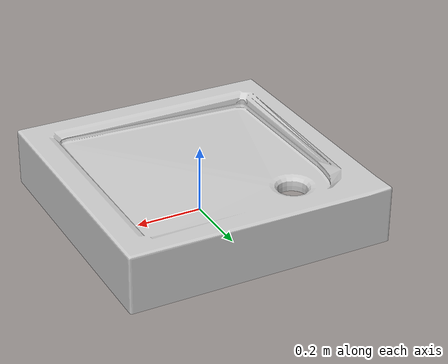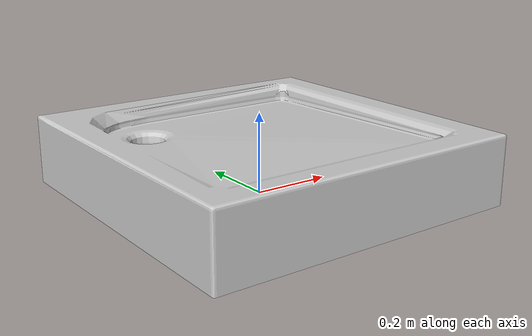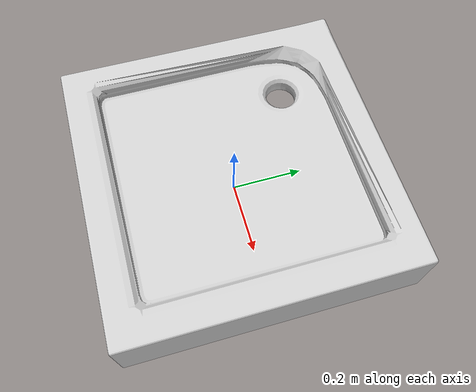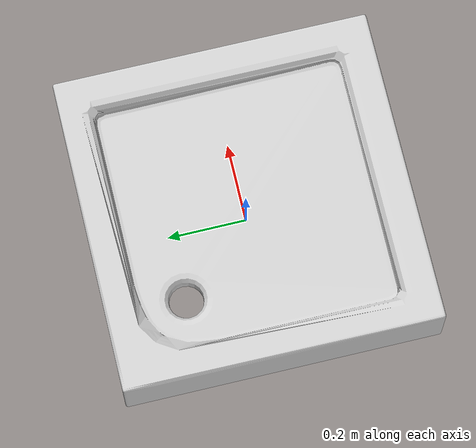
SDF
<?xml version="1.0" ?>
<sdf version="1.0">
  <model name="wading_pool">
    <static>true</static>
    <link name="wading_pool">
      <collision name="wading_pool">
        <pose>0 0 0 0 0 0</pose>
        <geometry>
          <mesh>
            <uri>model://wading_pool/meshes/model.dae</uri>
          </mesh>
        </geometry>
      </collision>

      <visual name="wading_pool_mesh">
	  <cast_shadows>true</cast_shadows>
        <geometry>
          <mesh>
	        <uri>model://wading_pool/meshes/model.dae</uri>
	      </mesh>
        </geometry>
      </visual>
    </link>
  </model>
</sdf>
